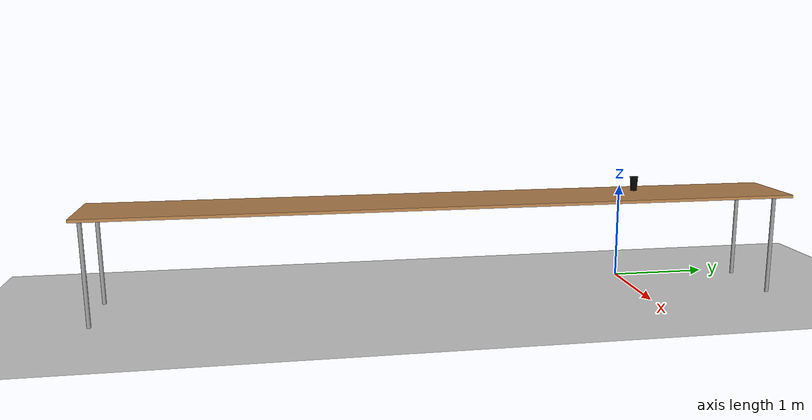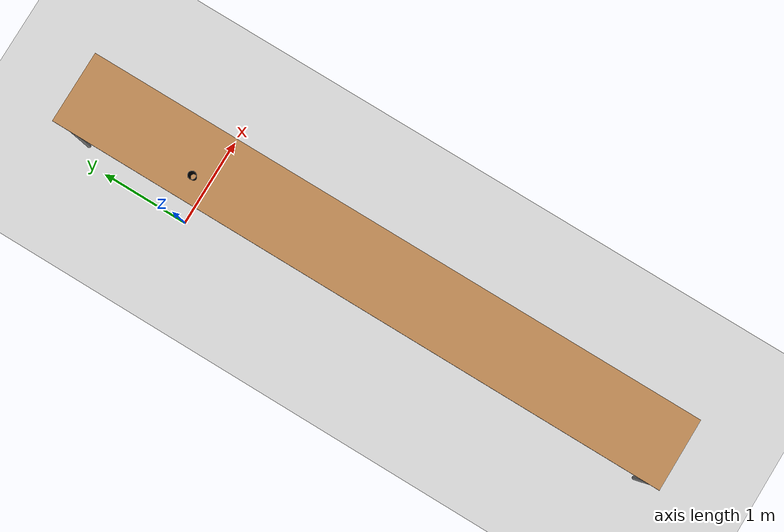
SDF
<sdf version="1.5">
 <world name="default">
  <include><uri>model://ground_plane</uri></include>
  <include><uri>model://sun</uri></include>
  <model name="table_model">
   <pose>0.55 0 0 0 0 1.570796</pose>
   <include><uri>model://table</uri></include>
  </model>
  <model name="lidar_model">
   <pose>0.55 0 0.95 0 0 0</pose>
   <include><uri>model://lidar_model</uri></include>
  </model>
  <model name="cup_model"><pose>0.4 0 1 0 0 0</pose><include><uri>model://ica_cup</uri></include></model>
  <physics type="ode">
   <gravity>0.000000 0.000000 -9.810000</gravity>
   <max_step_size>0.01</max_step_size>
   <real_time_factor>1</real_time_factor>
   <real_time_update_rate>100</real_time_update_rate>
   <ode>
    <solver><type>quick</type><iters>100</iters><precon_iters>0</precon_iters><sor>1.000000</sor></solver>
    <constraints>
     <cfm>0.000000</cfm>
     <erp>0.500000</erp>
     <contact_max_correcting_vel>1000.000000</contact_max_correcting_vel>
     <contact_surface_layer>0.00000</contact_surface_layer>
    </constraints>
   </ode>
  </physics>
 </world>
</sdf>

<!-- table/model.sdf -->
<sdf version="1.5">
  <model name="table">
    <static>true</static>
    <link name="link">
      <collision name="surface">
        <pose>-2 0 1.0 0 0 0</pose>
        <geometry>
          <box>
            <size>7.0 0.8 0.03</size>
          </box>
        </geometry>
        <surface>
          <friction>
            <ode>
              <mu>0.6</mu>
              <mu2>0.6</mu2>
            </ode>
          </friction>
        </surface>
      </collision>
      <visual name="visual1">
        <pose>-2 0 1.0 0 0 0</pose>
        <geometry>
          <box>
            <size>7.0 0.8 0.03</size>
          </box>
        </geometry>
        <material>
          <script>
            <uri>file://media/materials/scripts/gazebo.material</uri>
            <name>Gazebo/Wood</name>
          </script>
        </material>
      </visual>
      <collision name="front_left_leg">
        <pose>-5.4 0.38 0.5 0 0 0</pose>
        <geometry>
          <cylinder>
            <radius>0.02</radius>
            <length>1.0</length>
          </cylinder>
        </geometry>
      </collision>
      <visual name="front_left_leg">
        <pose>-5.4 0.38 0.5 0 0 0</pose>
        <geometry>
          <cylinder>
            <radius>0.02</radius>
            <length>1.0</length>
          </cylinder>
        </geometry>
        <material>
          <script>
            <uri>file://media/materials/scripts/gazebo.material</uri>
            <name>Gazebo/Grey</name>
          </script>
        </material>
      </visual>
      <collision name="front_right_leg">
        <pose>-5.4 -0.38 0.5 0 0 0</pose>
        <geometry>
          <cylinder>
            <radius>0.02</radius>
            <length>1.0</length>
          </cylinder>
        </geometry>
      </collision>
      <visual name="front_right_leg">
        <pose>-5.4 -0.38 0.5 0 0 0</pose>
        <geometry>
          <cylinder>
            <radius>0.02</radius>
            <length>1.0</length>
          </cylinder>
        </geometry>
        <material>
          <script>
            <uri>file://media/materials/scripts/gazebo.material</uri>
            <name>Gazebo/Grey</name>
          </script>
        </material>
      </visual>
      <collision name="back_right_leg">
        <pose>1.3 -0.38 0.5 0 0 0</pose>
        <geometry>
          <cylinder>
            <radius>0.02</radius>
            <length>1.0</length>
          </cylinder>
        </geometry>
      </collision>
      <visual name="back_right_leg">
        <pose>1.3 -0.38 0.5 0 0 0</pose>
        <geometry>
          <cylinder>
            <radius>0.02</radius>
            <length>1.0</length>
          </cylinder>
        </geometry>
        <material>
          <script>
            <uri>file://media/materials/scripts/gazebo.material</uri>
            <name>Gazebo/Grey</name>
          </script>
        </material>
      </visual>
      <collision name="back_left_leg">
        <pose>1.3 0.38 0.5 0 0 0</pose>
        <geometry>
          <cylinder>
            <radius>0.02</radius>
            <length>1.0</length>
          </cylinder>
        </geometry>
      </collision>
      <visual name="back_left_leg">
        <pose>1.3 0.38 0.5 0 0 0</pose>
        <geometry>
          <cylinder>
            <radius>0.02</radius>
            <length>1.0</length>
          </cylinder>
        </geometry>
        <material>
          <script>
            <uri>file://media/materials/scripts/gazebo.material</uri>
            <name>Gazebo/Grey</name>
          </script>
        </material>
      </visual>
    </link>
  </model>
</sdf>

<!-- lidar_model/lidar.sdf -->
<sdf version="1.6">
<model name="lidar">
	<static>true</static>
	<link name="lidar_link">
		<pose>0 0 0.02 0 0 0</pose>
      	<collision name="base_collision">
			<geometry>
				<cylinder>
					<radius>0.036285</radius>
					<length>0.04</length>
				</cylinder>
			</geometry>
      	</collision>

		<visual name="base_visual">
			<geometry>
				<cylinder>
					<radius>0.036285</radius>
					<length>0.04</length>
				</cylinder>
			</geometry>
		</visual>

		<sensor type="ray" name="sensor">
			<pose>0 0 -0.004645 0 0 0</pose>
			<visualize>true</visualize>
			<update_rate>10</update_rate>
			<ray>
				<scan>
					<horizontal>
						<samples>360</samples>
						<resolution>1</resolution>
						<min_angle>-3.141592</min_angle>
						<max_angle>3.141592</max_angle>
					</horizontal>
					<vertical>
						<samples>1</samples>
						<resolution>1</resolution>
						<min_angle>0</min_angle>
						<max_angle>-0.1</max_angle>
					</vertical>
				</scan>
				<range>
					<min>0.2</min>
					<max>18</max>
					<resolution>0.02</resolution>
				</range>
			</ray>
			<plugin name="lidar_control" filename="libsim_lidar_plugin.so">
        <lidardatatopicName>/sensor/lidar</lidardatatopicName>
				<topicName>/sensor/lidar/scan</topicName>
				<frameName>laser</frameName>
			</plugin>
		</sensor>
	</link>
</model>
</sdf>

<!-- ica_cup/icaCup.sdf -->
<sdf version="1.5">
<model name="ica_cup">
    <link name="Cup-Body">
      <inertial>
	      <pose>0.0 0.0 0.1 0 0 0</pose>
        <inertia>
          <ixx>0.0003</ixx>
          <ixy>0</ixy>
          <ixz>0</ixz>
          <iyy>0.0003</iyy>
          <iyz>0</iyz>
          <izz>0.0001</izz>
        </inertia>
      </inertial>
      <collision name="collision">
	      <pose>0 0 0.075 0 0 0</pose>
        <geometry>
          <cylinder>
            <radius>0.04</radius>
            <length>0.15</length>
          </cylinder>
        </geometry>
        <surface>
          <friction>
            <ode>
              <mu>1</mu>
              <mu2>1</mu2>
              <slip1>1</slip1>
              <slip2>1</slip2>
            </ode>
          </friction>
          <contact>
            <ode>
              <kp>10000000.0</kp>
              <kd>1.0</kd>
              <min_depth>0.003</min_depth>
              <max_vel>0.01</max_vel>
            </ode>
          </contact>
        </surface>
      </collision>
      <visual name="visual">
        <material>
            <ambient>0 0 0 1</ambient>
            <diffuse>0 0 0 1</diffuse>
            <specular>0 0 0 0</specular>
            <emissive>1 1 1 1</emissive>
        </material>
	      <pose>0 0 0 0 0 0</pose>
        <geometry>
          <mesh>
            <uri>model://ica_cup/meshes/ica_cup.dae</uri>
          </mesh>
        </geometry>
      </visual>
    </link>
    <plugin name="cup_plugin" filename="libsim_cup_plugin.so">
      <notificatie_Interval> 1 </notificatie_Interval> <!-- interval used for sending info messages. 0 means every simulation tick, if update_Interval is set higher update_Interval will be used as Notification_interval-->
      <update_Interval> 0 </update_Interval>
      <warning_Interval> 2 </warning_Interval> <!--Pleas dont spam the error message constantly ?-->
      <cupHeight> 8 </cupHeight> <!--CM-->
      <cupWidthBottom> 4.9 </cupWidthBottom> <!--CM-->
      <cupWidthTop> 4.9 </cupWidthTop> <!--CM-->
      <cupWeight> 8 </cupWeight> <!--Gram-->
      <cupVolumeOfLiquid> 50 </cupVolumeOfLiquid> <!--ml-->
      <!-- 2.5*2.5*pi(3.14) * 8 = 157 ml-->
    </plugin>
  </model>
</sdf>
